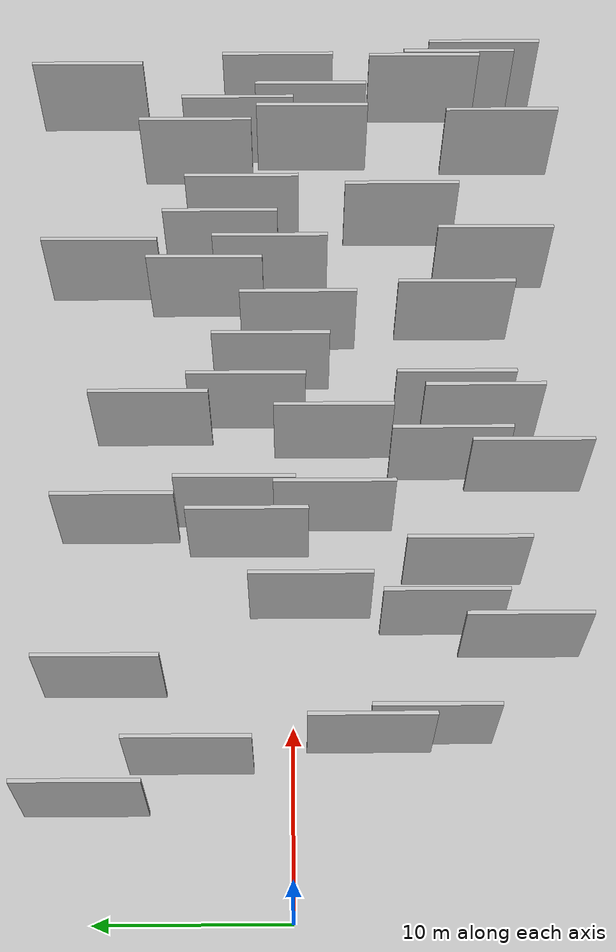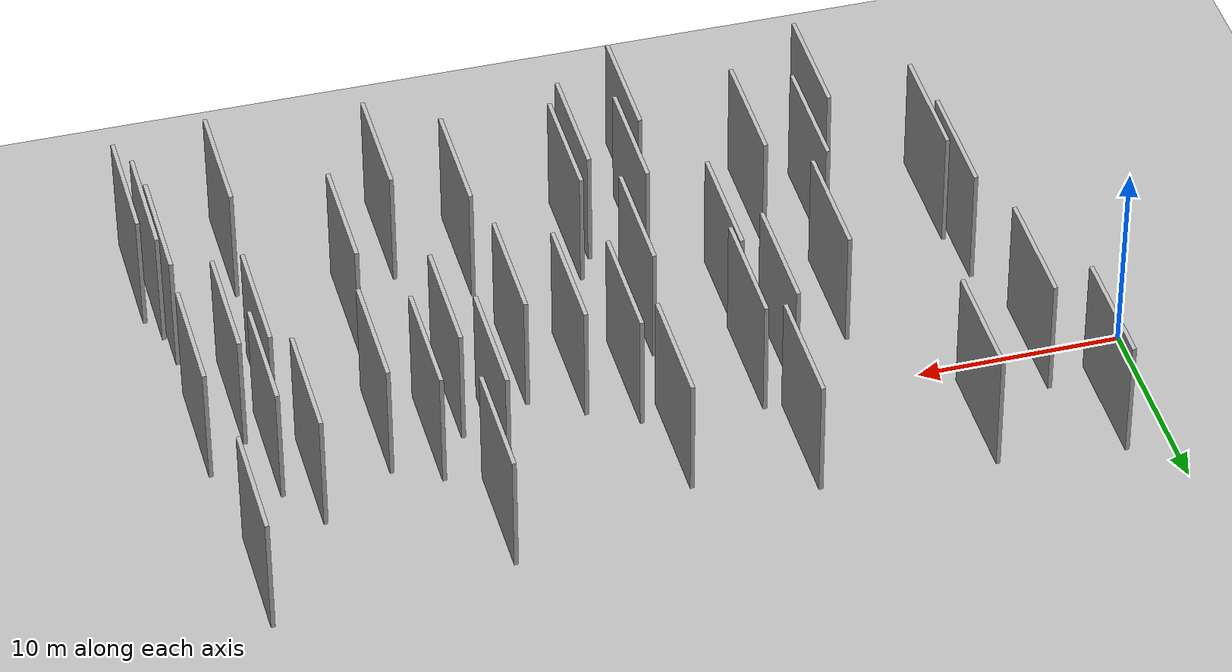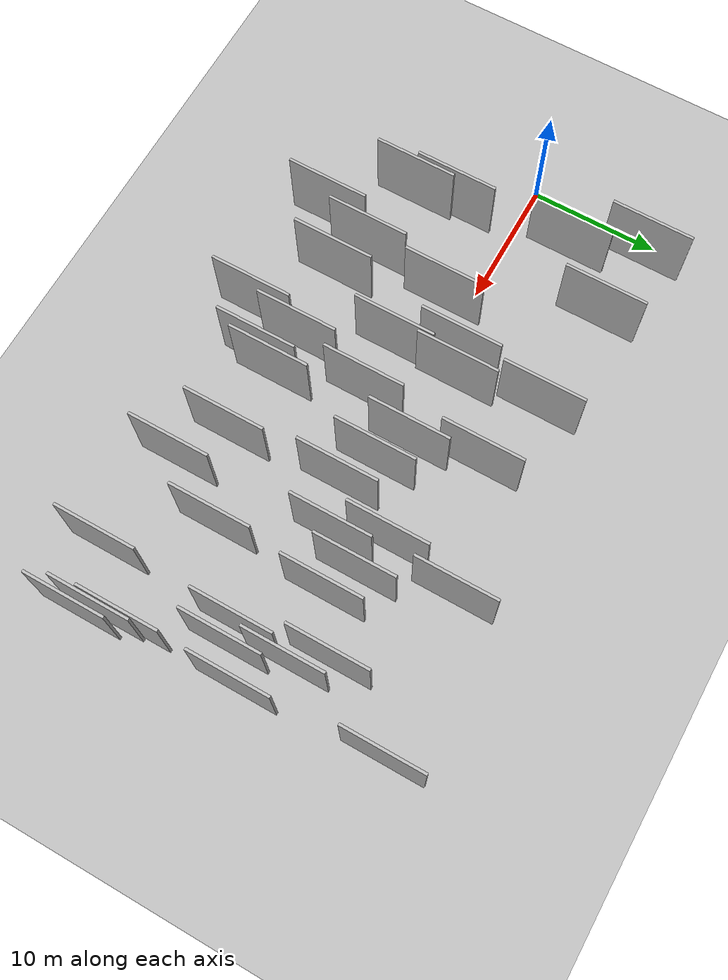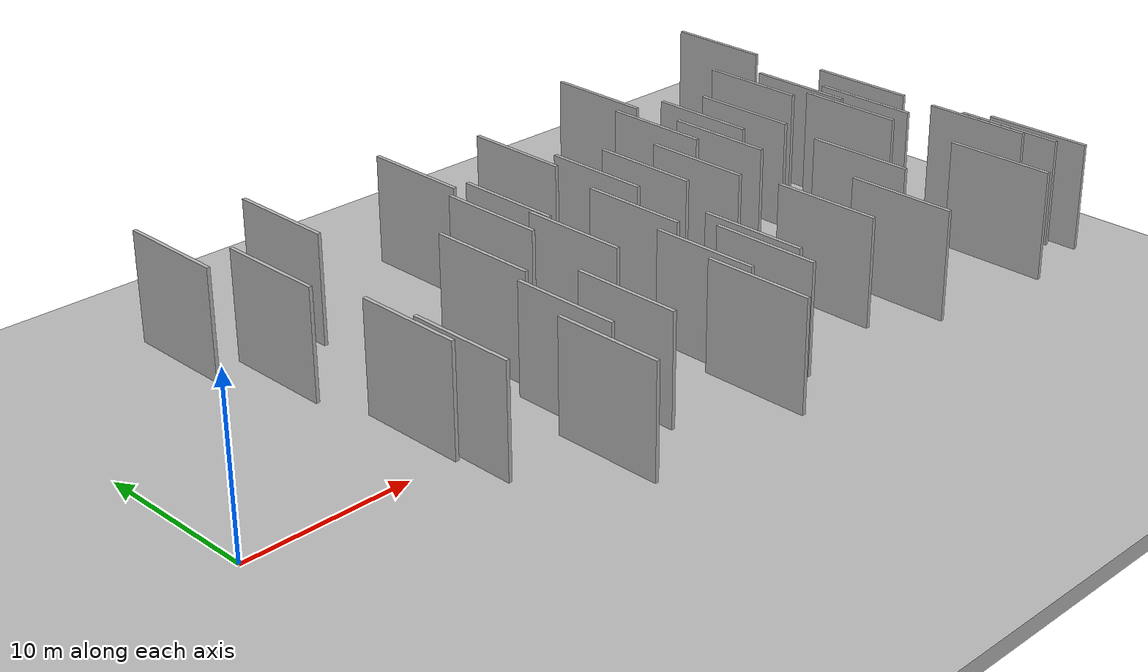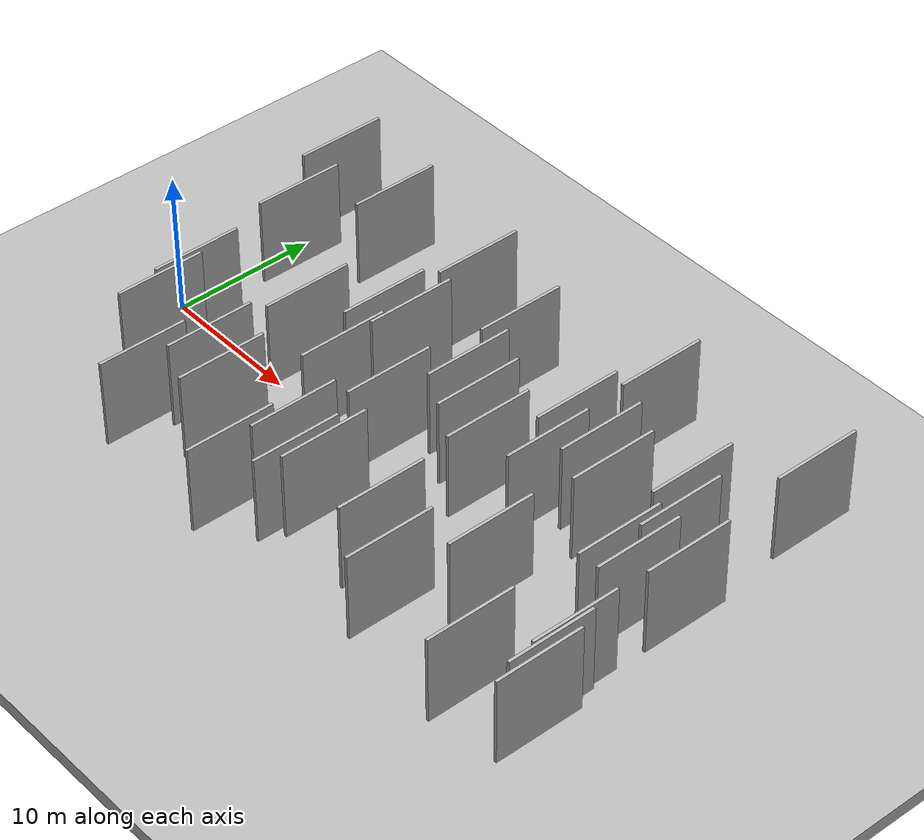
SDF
<?xml version="1.0" encoding="utf-8"?>

<sdf version="1.6">

   <world name="default">

      <gui fullscreen="0">

         <camera name="user_camera">

            <pose>-15 0 4.57585 0 0 0</pose>

            <view_controller>orbit</view_controller>

         </camera>

      </gui>

      <scene>

         <sky>

           <clouds>

             <speed>12</speed>

           </clouds>

         </sky>

         <ambient>0.4 0.4 0.4 1</ambient>

         <background>0.7 0.7 0.7 1</background>

         <shadows>1</shadows>

      </scene>

      <gravity>0 0 -9.8066</gravity>

      <magnetic_field>6e-06 2.3e-05 -4.2e-05</magnetic_field>

      <physics default="0" name="default_physics" type="ode">

         <ode>

            <solver>

               <type>quick</type>

               <iters>10</iters>

               <sor>1.0</sor>

               <use_dynamic_moi_rescaling>0</use_dynamic_moi_rescaling>

            </solver>

            <constraints>

               <cfm>0</cfm>

               <erp>0.2</erp>

               <contact_max_correcting_vel>100</contact_max_correcting_vel>

               <contact_surface_layer>0.001</contact_surface_layer>

            </constraints>

         </ode>

         <max_step_size>0.004</max_step_size>

         <real_time_factor>1</real_time_factor>

         <real_time_update_rate>250</real_time_update_rate>

      </physics>

      <light name="sun" type="directional">

         <cast_shadows>1</cast_shadows>

         <pose>0 0 10 0 0 0</pose>

         <diffuse>0.8 0.8 0.8 1</diffuse>

         <specular>0.2 0.2 0.2 1</specular>

         <attenuation>

            <range>1000</range>

            <constant>0.9</constant>

            <linear>0.01</linear>

            <quadratic>0.001</quadratic>

         </attenuation>

         <direction>-0.5 0.1 -0.9</direction>

      </light>

      <include>

         <name>ground_plane_1</name>

         <uri>model://HANNAS_ground_plane</uri>

         <pose>0 0 0  0 0 0</pose>

      </include>

      <include>

         <name>ground_plane_2</name>

         <uri>model://HANNAS_ground_plane</uri>

         <pose>100 0 0  0 0 0</pose>

      </include>

      <model name="HANNAS_wall_1">

         <static>1</static>

         <pose frame="">41.8605 2.8829 5.0 0.000000 0.000000 1.570796</pose>

         <link name="link">

            <pose frame="">0 0 3.00 0 0 0</pose>

            <collision name="collision">

               <geometry>

                  <box>

                     <size>6.00 0.2 6.00</size>

                  </box>

               </geometry>

               <max_contacts>10</max_contacts>

               <surface>

                  <contact>

                     <ode/>

                  </contact>

                  <bounce/>

                  <friction>

                     <torsional>

                        <ode/>

                     </torsional>

                     <ode/>

                  </friction>

               </surface>

            </collision>

            <visual name="visual">

               <cast_shadows>0</cast_shadows>

               <geometry>

                  <box>

                     <size>6.00 0.2 6.00</size>

                  </box>

               </geometry>

               <material>

                  <script>

                     <uri>model://HANNAS_wall/materials/scripts</uri>

                     <uri>model://HANNAS_wall/materials/textures</uri>

                     <name>vrc/HANNAS_wall</name>

                  </script>

               </material>

            </visual>

            <self_collide>0</self_collide>

            <enable_wind>0</enable_wind>

            <kinematic>0</kinematic>

         </link>

      </model>

      <model name="HANNAS_wall_2">

         <static>1</static>

         <pose frame="">21.2748 -11.8585 5.0 0.000000 0.000000 1.570796</pose>

         <link name="link">

            <pose frame="">0 0 3.00 0 0 0</pose>

            <collision name="collision">

               <geometry>

                  <box>

                     <size>6.00 0.2 6.00</size>

                  </box>

               </geometry>

               <max_contacts>10</max_contacts>

               <surface>

                  <contact>

                     <ode/>

                  </contact>

                  <bounce/>

                  <friction>

                     <torsional>

                        <ode/>

                     </torsional>

                     <ode/>

                  </friction>

               </surface>

            </collision>

            <visual name="visual">

               <cast_shadows>0</cast_shadows>

               <geometry>

                  <box>

                     <size>6.00 0.2 6.00</size>

                  </box>

               </geometry>

               <material>

                  <script>

                     <uri>model://HANNAS_wall/materials/scripts</uri>

                     <uri>model://HANNAS_wall/materials/textures</uri>

                     <name>vrc/HANNAS_wall</name>

                  </script>

               </material>

            </visual>

            <self_collide>0</self_collide>

            <enable_wind>0</enable_wind>

            <kinematic>0</kinematic>

         </link>

      </model>

      <model name="HANNAS_wall_3">

         <static>1</static>

         <pose frame="">44.7137 0.7372 5.0 0.000000 0.000000 1.570796</pose>

         <link name="link">

            <pose frame="">0 0 3.00 0 0 0</pose>

            <collision name="collision">

               <geometry>

                  <box>

                     <size>6.00 0.2 6.00</size>

                  </box>

               </geometry>

               <max_contacts>10</max_contacts>

               <surface>

                  <contact>

                     <ode/>

                  </contact>

                  <bounce/>

                  <friction>

                     <torsional>

                        <ode/>

                     </torsional>

                     <ode/>

                  </friction>

               </surface>

            </collision>

            <visual name="visual">

               <cast_shadows>0</cast_shadows>

               <geometry>

                  <box>

                     <size>6.00 0.2 6.00</size>

                  </box>

               </geometry>

               <material>

                  <script>

                     <uri>model://HANNAS_wall/materials/scripts</uri>

                     <uri>model://HANNAS_wall/materials/textures</uri>

                     <name>vrc/HANNAS_wall</name>

                  </script>

               </material>

            </visual>

            <self_collide>0</self_collide>

            <enable_wind>0</enable_wind>

            <kinematic>0</kinematic>

         </link>

      </model>

      <model name="HANNAS_wall_4">

         <static>1</static>

         <pose frame="">17.6522 2.2052 5.0 0.000000 0.000000 1.570796</pose>

         <link name="link">

            <pose frame="">0 0 3.00 0 0 0</pose>

            <collision name="collision">

               <geometry>

                  <box>

                     <size>6.00 0.2 6.00</size>

                  </box>

               </geometry>

               <max_contacts>10</max_contacts>

               <surface>

                  <contact>

                     <ode/>

                  </contact>

                  <bounce/>

                  <friction>

                     <torsional>

                        <ode/>

                     </torsional>

                     <ode/>

                  </friction>

               </surface>

            </collision>

            <visual name="visual">

               <cast_shadows>0</cast_shadows>

               <geometry>

                  <box>

                     <size>6.00 0.2 6.00</size>

                  </box>

               </geometry>

               <material>

                  <script>

                     <uri>model://HANNAS_wall/materials/scripts</uri>

                     <uri>model://HANNAS_wall/materials/textures</uri>

                     <name>vrc/HANNAS_wall</name>

                  </script>

               </material>

            </visual>

            <self_collide>0</self_collide>

            <enable_wind>0</enable_wind>

            <kinematic>0</kinematic>

         </link>

      </model>

      <model name="HANNAS_wall_5">

         <static>1</static>

         <pose frame="">41.3254 -1.1168 5.0 0.000000 0.000000 1.570796</pose>

         <link name="link">

            <pose frame="">0 0 3.00 0 0 0</pose>

            <collision name="collision">

               <geometry>

                  <box>

                     <size>6.00 0.2 6.00</size>

                  </box>

               </geometry>

               <max_contacts>10</max_contacts>

               <surface>

                  <contact>

                     <ode/>

                  </contact>

                  <bounce/>

                  <friction>

                     <torsional>

                        <ode/>

                     </torsional>

                     <ode/>

                  </friction>

               </surface>

            </collision>

            <visual name="visual">

               <cast_shadows>0</cast_shadows>

               <geometry>

                  <box>

                     <size>6.00 0.2 6.00</size>

                  </box>

               </geometry>

               <material>

                  <script>

                     <uri>model://HANNAS_wall/materials/scripts</uri>

                     <uri>model://HANNAS_wall/materials/textures</uri>

                     <name>vrc/HANNAS_wall</name>

                  </script>

               </material>

            </visual>

            <self_collide>0</self_collide>

            <enable_wind>0</enable_wind>

            <kinematic>0</kinematic>

         </link>

      </model>

      <model name="HANNAS_wall_6">

         <static>1</static>

         <pose frame="">32.8514 9.9570 5.0 0.000000 0.000000 1.570796</pose>

         <link name="link">

            <pose frame="">0 0 3.00 0 0 0</pose>

            <collision name="collision">

               <geometry>

                  <box>

                     <size>6.00 0.2 6.00</size>

                  </box>

               </geometry>

               <max_contacts>10</max_contacts>

               <surface>

                  <contact>

                     <ode/>

                  </contact>

                  <bounce/>

                  <friction>

                     <torsional>

                        <ode/>

                     </torsional>

                     <ode/>

                  </friction>

               </surface>

            </collision>

            <visual name="visual">

               <cast_shadows>0</cast_shadows>

               <geometry>

                  <box>

                     <size>6.00 0.2 6.00</size>

                  </box>

               </geometry>

               <material>

                  <script>

                     <uri>model://HANNAS_wall/materials/scripts</uri>

                     <uri>model://HANNAS_wall/materials/textures</uri>

                     <name>vrc/HANNAS_wall</name>

                  </script>

               </material>

            </visual>

            <self_collide>0</self_collide>

            <enable_wind>0</enable_wind>

            <kinematic>0</kinematic>

         </link>

      </model>

      <model name="HANNAS_wall_7">

         <static>1</static>

         <pose frame="">7.7913 -6.6376 5.0 0.000000 0.000000 1.570796</pose>

         <link name="link">

            <pose frame="">0 0 3.00 0 0 0</pose>

            <collision name="collision">

               <geometry>

                  <box>

                     <size>6.00 0.2 6.00</size>

                  </box>

               </geometry>

               <max_contacts>10</max_contacts>

               <surface>

                  <contact>

                     <ode/>

                  </contact>

                  <bounce/>

                  <friction>

                     <torsional>

                        <ode/>

                     </torsional>

                     <ode/>

                  </friction>

               </surface>

            </collision>

            <visual name="visual">

               <cast_shadows>0</cast_shadows>

               <geometry>

                  <box>

                     <size>6.00 0.2 6.00</size>

                  </box>

               </geometry>

               <material>

                  <script>

                     <uri>model://HANNAS_wall/materials/scripts</uri>

                     <uri>model://HANNAS_wall/materials/textures</uri>

                     <name>vrc/HANNAS_wall</name>

                  </script>

               </material>

            </visual>

            <self_collide>0</self_collide>

            <enable_wind>0</enable_wind>

            <kinematic>0</kinematic>

         </link>

      </model>

      <model name="HANNAS_wall_8">

         <static>1</static>

         <pose frame="">23.9920 7.1587 5.0 0.000000 0.000000 1.570796</pose>

         <link name="link">

            <pose frame="">0 0 3.00 0 0 0</pose>

            <collision name="collision">

               <geometry>

                  <box>

                     <size>6.00 0.2 6.00</size>

                  </box>

               </geometry>

               <max_contacts>10</max_contacts>

               <surface>

                  <contact>

                     <ode/>

                  </contact>

                  <bounce/>

                  <friction>

                     <torsional>

                        <ode/>

                     </torsional>

                     <ode/>

                  </friction>

               </surface>

            </collision>

            <visual name="visual">

               <cast_shadows>0</cast_shadows>

               <geometry>

                  <box>

                     <size>6.00 0.2 6.00</size>

                  </box>

               </geometry>

               <material>

                  <script>

                     <uri>model://HANNAS_wall/materials/scripts</uri>

                     <uri>model://HANNAS_wall/materials/textures</uri>

                     <name>vrc/HANNAS_wall</name>

                  </script>

               </material>

            </visual>

            <self_collide>0</self_collide>

            <enable_wind>0</enable_wind>

            <kinematic>0</kinematic>

         </link>

      </model>

      <model name="HANNAS_wall_9">

         <static>1</static>

         <pose frame="">21.9663 -7.9301 5.0 0.000000 0.000000 1.570796</pose>

         <link name="link">

            <pose frame="">0 0 3.00 0 0 0</pose>

            <collision name="collision">

               <geometry>

                  <box>

                     <size>6.00 0.2 6.00</size>

                  </box>

               </geometry>

               <max_contacts>10</max_contacts>

               <surface>

                  <contact>

                     <ode/>

                  </contact>

                  <bounce/>

                  <friction>

                     <torsional>

                        <ode/>

                     </torsional>

                     <ode/>

                  </friction>

               </surface>

            </collision>

            <visual name="visual">

               <cast_shadows>0</cast_shadows>

               <geometry>

                  <box>

                     <size>6.00 0.2 6.00</size>

                  </box>

               </geometry>

               <material>

                  <script>

                     <uri>model://HANNAS_wall/materials/scripts</uri>

                     <uri>model://HANNAS_wall/materials/textures</uri>

                     <name>vrc/HANNAS_wall</name>

                  </script>

               </material>

            </visual>

            <self_collide>0</self_collide>

            <enable_wind>0</enable_wind>

            <kinematic>0</kinematic>

         </link>

      </model>

      <model name="HANNAS_wall_10">

         <static>1</static>

         <pose frame="">40.9733 -11.3101 5.0 0.000000 0.000000 1.570796</pose>

         <link name="link">

            <pose frame="">0 0 3.00 0 0 0</pose>

            <collision name="collision">

               <geometry>

                  <box>

                     <size>6.00 0.2 6.00</size>

                  </box>

               </geometry>

               <max_contacts>10</max_contacts>

               <surface>

                  <contact>

                     <ode/>

                  </contact>

                  <bounce/>

                  <friction>

                     <torsional>

                        <ode/>

                     </torsional>

                     <ode/>

                  </friction>

               </surface>

            </collision>

            <visual name="visual">

               <cast_shadows>0</cast_shadows>

               <geometry>

                  <box>

                     <size>6.00 0.2 6.00</size>

                  </box>

               </geometry>

               <material>

                  <script>

                     <uri>model://HANNAS_wall/materials/scripts</uri>

                     <uri>model://HANNAS_wall/materials/textures</uri>

                     <name>vrc/HANNAS_wall</name>

                  </script>

               </material>

            </visual>

            <self_collide>0</self_collide>

            <enable_wind>0</enable_wind>

            <kinematic>0</kinematic>

         </link>

      </model>

      <model name="HANNAS_wall_11">

         <static>1</static>

         <pose frame="">18.4285 8.7415 5.0 0.000000 0.000000 1.570796</pose>

         <link name="link">

            <pose frame="">0 0 3.00 0 0 0</pose>

            <collision name="collision">

               <geometry>

                  <box>

                     <size>6.00 0.2 6.00</size>

                  </box>

               </geometry>

               <max_contacts>10</max_contacts>

               <surface>

                  <contact>

                     <ode/>

                  </contact>

                  <bounce/>

                  <friction>

                     <torsional>

                        <ode/>

                     </torsional>

                     <ode/>

                  </friction>

               </surface>

            </collision>

            <visual name="visual">

               <cast_shadows>0</cast_shadows>

               <geometry>

                  <box>

                     <size>6.00 0.2 6.00</size>

                  </box>

               </geometry>

               <material>

                  <script>

                     <uri>model://HANNAS_wall/materials/scripts</uri>

                     <uri>model://HANNAS_wall/materials/textures</uri>

                     <name>vrc/HANNAS_wall</name>

                  </script>

               </material>

            </visual>

            <self_collide>0</self_collide>

            <enable_wind>0</enable_wind>

            <kinematic>0</kinematic>

         </link>

      </model>

      <model name="HANNAS_wall_12">

         <static>1</static>

         <pose frame="">34.6141 3.7441 5.0 0.000000 0.000000 1.570796</pose>

         <link name="link">

            <pose frame="">0 0 3.00 0 0 0</pose>

            <collision name="collision">

               <geometry>

                  <box>

                     <size>6.00 0.2 6.00</size>

                  </box>

               </geometry>

               <max_contacts>10</max_contacts>

               <surface>

                  <contact>

                     <ode/>

                  </contact>

                  <bounce/>

                  <friction>

                     <torsional>

                        <ode/>

                     </torsional>

                     <ode/>

                  </friction>

               </surface>

            </collision>

            <visual name="visual">

               <cast_shadows>0</cast_shadows>

               <geometry>

                  <box>

                     <size>6.00 0.2 6.00</size>

                  </box>

               </geometry>

               <material>

                  <script>

                     <uri>model://HANNAS_wall/materials/scripts</uri>

                     <uri>model://HANNAS_wall/materials/textures</uri>

                     <name>vrc/HANNAS_wall</name>

                  </script>

               </material>

            </visual>

            <self_collide>0</self_collide>

            <enable_wind>0</enable_wind>

            <kinematic>0</kinematic>

         </link>

      </model>

      <model name="HANNAS_wall_13">

         <static>1</static>

         <pose frame="">24.3329 -9.6374 5.0 0.000000 0.000000 1.570796</pose>

         <link name="link">

            <pose frame="">0 0 3.00 0 0 0</pose>

            <collision name="collision">

               <geometry>

                  <box>

                     <size>6.00 0.2 6.00</size>

                  </box>

               </geometry>

               <max_contacts>10</max_contacts>

               <surface>

                  <contact>

                     <ode/>

                  </contact>

                  <bounce/>

                  <friction>

                     <torsional>

                        <ode/>

                     </torsional>

                     <ode/>

                  </friction>

               </surface>

            </collision>

            <visual name="visual">

               <cast_shadows>0</cast_shadows>

               <geometry>

                  <box>

                     <size>6.00 0.2 6.00</size>

                  </box>

               </geometry>

               <material>

                  <script>

                     <uri>model://HANNAS_wall/materials/scripts</uri>

                     <uri>model://HANNAS_wall/materials/textures</uri>

                     <name>vrc/HANNAS_wall</name>

                  </script>

               </material>

            </visual>

            <self_collide>0</self_collide>

            <enable_wind>0</enable_wind>

            <kinematic>0</kinematic>

         </link>

      </model>

      <model name="HANNAS_wall_14">

         <static>1</static>

         <pose frame="">14.3051 -0.8612 5.0 0.000000 0.000000 1.570796</pose>

         <link name="link">

            <pose frame="">0 0 3.00 0 0 0</pose>

            <collision name="collision">

               <geometry>

                  <box>

                     <size>6.00 0.2 6.00</size>

                  </box>

               </geometry>

               <max_contacts>10</max_contacts>

               <surface>

                  <contact>

                     <ode/>

                  </contact>

                  <bounce/>

                  <friction>

                     <torsional>

                        <ode/>

                     </torsional>

                     <ode/>

                  </friction>

               </surface>

            </collision>

            <visual name="visual">

               <cast_shadows>0</cast_shadows>

               <geometry>

                  <box>

                     <size>6.00 0.2 6.00</size>

                  </box>

               </geometry>

               <material>

                  <script>

                     <uri>model://HANNAS_wall/materials/scripts</uri>

                     <uri>model://HANNAS_wall/materials/textures</uri>

                     <name>vrc/HANNAS_wall</name>

                  </script>

               </material>

            </visual>

            <self_collide>0</self_collide>

            <enable_wind>0</enable_wind>

            <kinematic>0</kinematic>

         </link>

      </model>

      <model name="HANNAS_wall_15">

         <static>1</static>

         <pose frame="">25.0106 2.3156 5.0 0.000000 0.000000 1.570796</pose>

         <link name="link">

            <pose frame="">0 0 3.00 0 0 0</pose>

            <collision name="collision">

               <geometry>

                  <box>

                     <size>6.00 0.2 6.00</size>

                  </box>

               </geometry>

               <max_contacts>10</max_contacts>

               <surface>

                  <contact>

                     <ode/>

                  </contact>

                  <bounce/>

                  <friction>

                     <torsional>

                        <ode/>

                     </torsional>

                     <ode/>

                  </friction>

               </surface>

            </collision>

            <visual name="visual">

               <cast_shadows>0</cast_shadows>

               <geometry>

                  <box>

                     <size>6.00 0.2 6.00</size>

                  </box>

               </geometry>

               <material>

                  <script>

                     <uri>model://HANNAS_wall/materials/scripts</uri>

                     <uri>model://HANNAS_wall/materials/textures</uri>

                     <name>vrc/HANNAS_wall</name>

                  </script>

               </material>

            </visual>

            <self_collide>0</self_collide>

            <enable_wind>0</enable_wind>

            <kinematic>0</kinematic>

         </link>

      </model>

      <model name="HANNAS_wall_16">

         <static>1</static>

         <pose frame="">23.2365 -2.0718 5.0 0.000000 0.000000 1.570796</pose>

         <link name="link">

            <pose frame="">0 0 3.00 0 0 0</pose>

            <collision name="collision">

               <geometry>

                  <box>

                     <size>6.00 0.2 6.00</size>

                  </box>

               </geometry>

               <max_contacts>10</max_contacts>

               <surface>

                  <contact>

                     <ode/>

                  </contact>

                  <bounce/>

                  <friction>

                     <torsional>

                        <ode/>

                     </torsional>

                     <ode/>

                  </friction>

               </surface>

            </collision>

            <visual name="visual">

               <cast_shadows>0</cast_shadows>

               <geometry>

                  <box>

                     <size>6.00 0.2 6.00</size>

                  </box>

               </geometry>

               <material>

                  <script>

                     <uri>model://HANNAS_wall/materials/scripts</uri>

                     <uri>model://HANNAS_wall/materials/textures</uri>

                     <name>vrc/HANNAS_wall</name>

                  </script>

               </material>

            </visual>

            <self_collide>0</self_collide>

            <enable_wind>0</enable_wind>

            <kinematic>0</kinematic>

         </link>

      </model>

      <model name="HANNAS_wall_17">

         <static>1</static>

         <pose frame="">25.0670 -8.2368 5.0 0.000000 0.000000 1.570796</pose>

         <link name="link">

            <pose frame="">0 0 3.00 0 0 0</pose>

            <collision name="collision">

               <geometry>

                  <box>

                     <size>6.00 0.2 6.00</size>

                  </box>

               </geometry>

               <max_contacts>10</max_contacts>

               <surface>

                  <contact>

                     <ode/>

                  </contact>

                  <bounce/>

                  <friction>

                     <torsional>

                        <ode/>

                     </torsional>

                     <ode/>

                  </friction>

               </surface>

            </collision>

            <visual name="visual">

               <cast_shadows>0</cast_shadows>

               <geometry>

                  <box>

                     <size>6.00 0.2 6.00</size>

                  </box>

               </geometry>

               <material>

                  <script>

                     <uri>model://HANNAS_wall/materials/scripts</uri>

                     <uri>model://HANNAS_wall/materials/textures</uri>

                     <name>vrc/HANNAS_wall</name>

                  </script>

               </material>

            </visual>

            <self_collide>0</self_collide>

            <enable_wind>0</enable_wind>

            <kinematic>0</kinematic>

         </link>

      </model>

      <model name="HANNAS_wall_18">

         <static>1</static>

         <pose frame="">13.4215 -7.3041 5.0 0.000000 0.000000 1.570796</pose>

         <link name="link">

            <pose frame="">0 0 3.00 0 0 0</pose>

            <collision name="collision">

               <geometry>

                  <box>

                     <size>6.00 0.2 6.00</size>

                  </box>

               </geometry>

               <max_contacts>10</max_contacts>

               <surface>

                  <contact>

                     <ode/>

                  </contact>

                  <bounce/>

                  <friction>

                     <torsional>

                        <ode/>

                     </torsional>

                     <ode/>

                  </friction>

               </surface>

            </collision>

            <visual name="visual">

               <cast_shadows>0</cast_shadows>

               <geometry>

                  <box>

                     <size>6.00 0.2 6.00</size>

                  </box>

               </geometry>

               <material>

                  <script>

                     <uri>model://HANNAS_wall/materials/scripts</uri>

                     <uri>model://HANNAS_wall/materials/textures</uri>

                     <name>vrc/HANNAS_wall</name>

                  </script>

               </material>

            </visual>

            <self_collide>0</self_collide>

            <enable_wind>0</enable_wind>

            <kinematic>0</kinematic>

         </link>

      </model>

      <model name="HANNAS_wall_19">

         <static>1</static>

         <pose frame="">33.0993 1.1407 5.0 0.000000 0.000000 1.570796</pose>

         <link name="link">

            <pose frame="">0 0 3.00 0 0 0</pose>

            <collision name="collision">

               <geometry>

                  <box>

                     <size>6.00 0.2 6.00</size>

                  </box>

               </geometry>

               <max_contacts>10</max_contacts>

               <surface>

                  <contact>

                     <ode/>

                  </contact>

                  <bounce/>

                  <friction>

                     <torsional>

                        <ode/>

                     </torsional>

                     <ode/>

                  </friction>

               </surface>

            </collision>

            <visual name="visual">

               <cast_shadows>0</cast_shadows>

               <geometry>

                  <box>

                     <size>6.00 0.2 6.00</size>

                  </box>

               </geometry>

               <material>

                  <script>

                     <uri>model://HANNAS_wall/materials/scripts</uri>

                     <uri>model://HANNAS_wall/materials/textures</uri>

                     <name>vrc/HANNAS_wall</name>

                  </script>

               </material>

            </visual>

            <self_collide>0</self_collide>

            <enable_wind>0</enable_wind>

            <kinematic>0</kinematic>

         </link>

      </model>

      <model name="HANNAS_wall_20">

         <static>1</static>

         <pose frame="">7.3598 -3.6595 5.0 0.000000 0.000000 1.570796</pose>

         <link name="link">

            <pose frame="">0 0 3.00 0 0 0</pose>

            <collision name="collision">

               <geometry>

                  <box>

                     <size>6.00 0.2 6.00</size>

                  </box>

               </geometry>

               <max_contacts>10</max_contacts>

               <surface>

                  <contact>

                     <ode/>

                  </contact>

                  <bounce/>

                  <friction>

                     <torsional>

                        <ode/>

                     </torsional>

                     <ode/>

                  </friction>

               </surface>

            </collision>

            <visual name="visual">

               <cast_shadows>0</cast_shadows>

               <geometry>

                  <box>

                     <size>6.00 0.2 6.00</size>

                  </box>

               </geometry>

               <material>

                  <script>

                     <uri>model://HANNAS_wall/materials/scripts</uri>

                     <uri>model://HANNAS_wall/materials/textures</uri>

                     <name>vrc/HANNAS_wall</name>

                  </script>

               </material>

            </visual>

            <self_collide>0</self_collide>

            <enable_wind>0</enable_wind>

            <kinematic>0</kinematic>

         </link>

      </model>

      <model name="HANNAS_wall_21">

         <static>1</static>

         <pose frame="">40.3976 5.1597 5.0 0.000000 0.000000 1.570796</pose>

         <link name="link">

            <pose frame="">0 0 3.00 0 0 0</pose>

            <collision name="collision">

               <geometry>

                  <box>

                     <size>6.00 0.2 6.00</size>

                  </box>

               </geometry>

               <max_contacts>10</max_contacts>

               <surface>

                  <contact>

                     <ode/>

                  </contact>

                  <bounce/>

                  <friction>

                     <torsional>

                        <ode/>

                     </torsional>

                     <ode/>

                  </friction>

               </surface>

            </collision>

            <visual name="visual">

               <cast_shadows>0</cast_shadows>

               <geometry>

                  <box>

                     <size>6.00 0.2 6.00</size>

                  </box>

               </geometry>

               <material>

                  <script>

                     <uri>model://HANNAS_wall/materials/scripts</uri>

                     <uri>model://HANNAS_wall/materials/textures</uri>

                     <name>vrc/HANNAS_wall</name>

                  </script>

               </material>

            </visual>

            <self_collide>0</self_collide>

            <enable_wind>0</enable_wind>

            <kinematic>0</kinematic>

         </link>

      </model>

      <model name="HANNAS_wall_22">

         <static>1</static>

         <pose frame="">10.2107 9.1877 5.0 0.000000 0.000000 1.570796</pose>

         <link name="link">

            <pose frame="">0 0 3.00 0 0 0</pose>

            <collision name="collision">

               <geometry>

                  <box>

                     <size>6.00 0.2 6.00</size>

                  </box>

               </geometry>

               <max_contacts>10</max_contacts>

               <surface>

                  <contact>

                     <ode/>

                  </contact>

                  <bounce/>

                  <friction>

                     <torsional>

                        <ode/>

                     </torsional>

                     <ode/>

                  </friction>

               </surface>

            </collision>

            <visual name="visual">

               <cast_shadows>0</cast_shadows>

               <geometry>

                  <box>

                     <size>6.00 0.2 6.00</size>

                  </box>

               </geometry>

               <material>

                  <script>

                     <uri>model://HANNAS_wall/materials/scripts</uri>

                     <uri>model://HANNAS_wall/materials/textures</uri>

                     <name>vrc/HANNAS_wall</name>

                  </script>

               </material>

            </visual>

            <self_collide>0</self_collide>

            <enable_wind>0</enable_wind>

            <kinematic>0</kinematic>

         </link>

      </model>

      <model name="HANNAS_wall_23">

         <static>1</static>

         <pose frame="">6.3220 4.8738 5.0 0.000000 0.000000 1.570796</pose>

         <link name="link">

            <pose frame="">0 0 3.00 0 0 0</pose>

            <collision name="collision">

               <geometry>

                  <box>

                     <size>6.00 0.2 6.00</size>

                  </box>

               </geometry>

               <max_contacts>10</max_contacts>

               <surface>

                  <contact>

                     <ode/>

                  </contact>

                  <bounce/>

                  <friction>

                     <torsional>

                        <ode/>

                     </torsional>

                     <ode/>

                  </friction>

               </surface>

            </collision>

            <visual name="visual">

               <cast_shadows>0</cast_shadows>

               <geometry>

                  <box>

                     <size>6.00 0.2 6.00</size>

                  </box>

               </geometry>

               <material>

                  <script>

                     <uri>model://HANNAS_wall/materials/scripts</uri>

                     <uri>model://HANNAS_wall/materials/textures</uri>

                     <name>vrc/HANNAS_wall</name>

                  </script>

               </material>

            </visual>

            <self_collide>0</self_collide>

            <enable_wind>0</enable_wind>

            <kinematic>0</kinematic>

         </link>

      </model>

      <model name="HANNAS_wall_24">

         <static>1</static>

         <pose frame="">31.7889 4.5141 5.0 0.000000 0.000000 1.570796</pose>

         <link name="link">

            <pose frame="">0 0 3.00 0 0 0</pose>

            <collision name="collision">

               <geometry>

                  <box>

                     <size>6.00 0.2 6.00</size>

                  </box>

               </geometry>

               <max_contacts>10</max_contacts>

               <surface>

                  <contact>

                     <ode/>

                  </contact>

                  <bounce/>

                  <friction>

                     <torsional>

                        <ode/>

                     </torsional>

                     <ode/>

                  </friction>

               </surface>

            </collision>

            <visual name="visual">

               <cast_shadows>0</cast_shadows>

               <geometry>

                  <box>

                     <size>6.00 0.2 6.00</size>

                  </box>

               </geometry>

               <material>

                  <script>

                     <uri>model://HANNAS_wall/materials/scripts</uri>

                     <uri>model://HANNAS_wall/materials/textures</uri>

                     <name>vrc/HANNAS_wall</name>

                  </script>

               </material>

            </visual>

            <self_collide>0</self_collide>

            <enable_wind>0</enable_wind>

            <kinematic>0</kinematic>

         </link>

      </model>

      <model name="HANNAS_wall_25">

         <static>1</static>

         <pose frame="">45.5081 -10.5520 5.0 0.000000 0.000000 1.570796</pose>

         <link name="link">

            <pose frame="">0 0 3.00 0 0 0</pose>

            <collision name="collision">

               <geometry>

                  <box>

                     <size>6.00 0.2 6.00</size>

                  </box>

               </geometry>

               <max_contacts>10</max_contacts>

               <surface>

                  <contact>

                     <ode/>

                  </contact>

                  <bounce/>

                  <friction>

                     <torsional>

                        <ode/>

                     </torsional>

                     <ode/>

                  </friction>

               </surface>

            </collision>

            <visual name="visual">

               <cast_shadows>0</cast_shadows>

               <geometry>

                  <box>

                     <size>6.00 0.2 6.00</size>

                  </box>

               </geometry>

               <material>

                  <script>

                     <uri>model://HANNAS_wall/materials/scripts</uri>

                     <uri>model://HANNAS_wall/materials/textures</uri>

                     <name>vrc/HANNAS_wall</name>

                  </script>

               </material>

            </visual>

            <self_collide>0</self_collide>

            <enable_wind>0</enable_wind>

            <kinematic>0</kinematic>

         </link>

      </model>

      <model name="HANNAS_wall_26">

         <static>1</static>

         <pose frame="">29.7296 -0.3176 5.0 0.000000 0.000000 1.570796</pose>

         <link name="link">

            <pose frame="">0 0 3.00 0 0 0</pose>

            <collision name="collision">

               <geometry>

                  <box>

                     <size>6.00 0.2 6.00</size>

                  </box>

               </geometry>

               <max_contacts>10</max_contacts>

               <surface>

                  <contact>

                     <ode/>

                  </contact>

                  <bounce/>

                  <friction>

                     <torsional>

                        <ode/>

                     </torsional>

                     <ode/>

                  </friction>

               </surface>

            </collision>

            <visual name="visual">

               <cast_shadows>0</cast_shadows>

               <geometry>

                  <box>

                     <size>6.00 0.2 6.00</size>

                  </box>

               </geometry>

               <material>

                  <script>

                     <uri>model://HANNAS_wall/materials/scripts</uri>

                     <uri>model://HANNAS_wall/materials/textures</uri>

                     <name>vrc/HANNAS_wall</name>

                  </script>

               </material>

            </visual>

            <self_collide>0</self_collide>

            <enable_wind>0</enable_wind>

            <kinematic>0</kinematic>

         </link>

      </model>

      <model name="HANNAS_wall_27">

         <static>1</static>

         <pose frame="">16.1032 -8.4959 5.0 0.000000 0.000000 1.570796</pose>

         <link name="link">

            <pose frame="">0 0 3.00 0 0 0</pose>

            <collision name="collision">

               <geometry>

                  <box>

                     <size>6.00 0.2 6.00</size>

                  </box>

               </geometry>

               <max_contacts>10</max_contacts>

               <surface>

                  <contact>

                     <ode/>

                  </contact>

                  <bounce/>

                  <friction>

                     <torsional>

                        <ode/>

                     </torsional>

                     <ode/>

                  </friction>

               </surface>

            </collision>

            <visual name="visual">

               <cast_shadows>0</cast_shadows>

               <geometry>

                  <box>

                     <size>6.00 0.2 6.00</size>

                  </box>

               </geometry>

               <material>

                  <script>

                     <uri>model://HANNAS_wall/materials/scripts</uri>

                     <uri>model://HANNAS_wall/materials/textures</uri>

                     <name>vrc/HANNAS_wall</name>

                  </script>

               </material>

            </visual>

            <self_collide>0</self_collide>

            <enable_wind>0</enable_wind>

            <kinematic>0</kinematic>

         </link>

      </model>

      <model name="HANNAS_wall_28">

         <static>1</static>

         <pose frame="">44.0867 11.0517 5.0 0.000000 0.000000 1.570796</pose>

         <link name="link">

            <pose frame="">0 0 3.00 0 0 0</pose>

            <collision name="collision">

               <geometry>

                  <box>

                     <size>6.00 0.2 6.00</size>

                  </box>

               </geometry>

               <max_contacts>10</max_contacts>

               <surface>

                  <contact>

                     <ode/>

                  </contact>

                  <bounce/>

                  <friction>

                     <torsional>

                        <ode/>

                     </torsional>

                     <ode/>

                  </friction>

               </surface>

            </collision>

            <visual name="visual">

               <cast_shadows>0</cast_shadows>

               <geometry>

                  <box>

                     <size>6.00 0.2 6.00</size>

                  </box>

               </geometry>

               <material>

                  <script>

                     <uri>model://HANNAS_wall/materials/scripts</uri>

                     <uri>model://HANNAS_wall/materials/textures</uri>

                     <name>vrc/HANNAS_wall</name>

                  </script>

               </material>

            </visual>

            <self_collide>0</self_collide>

            <enable_wind>0</enable_wind>

            <kinematic>0</kinematic>

         </link>

      </model>

      <model name="HANNAS_wall_29">

         <static>1</static>

         <pose frame="">19.3353 2.8286 5.0 0.000000 0.000000 1.570796</pose>

         <link name="link">

            <pose frame="">0 0 3.00 0 0 0</pose>

            <collision name="collision">

               <geometry>

                  <box>

                     <size>6.00 0.2 6.00</size>

                  </box>

               </geometry>

               <max_contacts>10</max_contacts>

               <surface>

                  <contact>

                     <ode/>

                  </contact>

                  <bounce/>

                  <friction>

                     <torsional>

                        <ode/>

                     </torsional>

                     <ode/>

                  </friction>

               </surface>

            </collision>

            <visual name="visual">

               <cast_shadows>0</cast_shadows>

               <geometry>

                  <box>

                     <size>6.00 0.2 6.00</size>

                  </box>

               </geometry>

               <material>

                  <script>

                     <uri>model://HANNAS_wall/materials/scripts</uri>

                     <uri>model://HANNAS_wall/materials/textures</uri>

                     <name>vrc/HANNAS_wall</name>

                  </script>

               </material>

            </visual>

            <self_collide>0</self_collide>

            <enable_wind>0</enable_wind>

            <kinematic>0</kinematic>

         </link>

      </model>

      <model name="HANNAS_wall_30">

         <static>1</static>

         <pose frame="">33.5473 -10.6011 5.0 0.000000 0.000000 1.570796</pose>

         <link name="link">

            <pose frame="">0 0 3.00 0 0 0</pose>

            <collision name="collision">

               <geometry>

                  <box>

                     <size>6.00 0.2 6.00</size>

                  </box>

               </geometry>

               <max_contacts>10</max_contacts>

               <surface>

                  <contact>

                     <ode/>

                  </contact>

                  <bounce/>

                  <friction>

                     <torsional>

                        <ode/>

                     </torsional>

                     <ode/>

                  </friction>

               </surface>

            </collision>

            <visual name="visual">

               <cast_shadows>0</cast_shadows>

               <geometry>

                  <box>

                     <size>6.00 0.2 6.00</size>

                  </box>

               </geometry>

               <material>

                  <script>

                     <uri>model://HANNAS_wall/materials/scripts</uri>

                     <uri>model://HANNAS_wall/materials/textures</uri>

                     <name>vrc/HANNAS_wall</name>

                  </script>

               </material>

            </visual>

            <self_collide>0</self_collide>

            <enable_wind>0</enable_wind>

            <kinematic>0</kinematic>

         </link>

      </model>

      <model name="HANNAS_wall_31">

         <static>1</static>

         <pose frame="">27.2971 1.0812 5.0 0.000000 0.000000 1.570796</pose>

         <link name="link">

            <pose frame="">0 0 3.00 0 0 0</pose>

            <collision name="collision">

               <geometry>

                  <box>

                     <size>6.00 0.2 6.00</size>

                  </box>

               </geometry>

               <max_contacts>10</max_contacts>

               <surface>

                  <contact>

                     <ode/>

                  </contact>

                  <bounce/>

                  <friction>

                     <torsional>

                        <ode/>

                     </torsional>

                     <ode/>

                  </friction>

               </surface>

            </collision>

            <visual name="visual">

               <cast_shadows>0</cast_shadows>

               <geometry>

                  <box>

                     <size>6.00 0.2 6.00</size>

                  </box>

               </geometry>

               <material>

                  <script>

                     <uri>model://HANNAS_wall/materials/scripts</uri>

                     <uri>model://HANNAS_wall/materials/textures</uri>

                     <name>vrc/HANNAS_wall</name>

                  </script>

               </material>

            </visual>

            <self_collide>0</self_collide>

            <enable_wind>0</enable_wind>

            <kinematic>0</kinematic>

         </link>

      </model>

      <model name="HANNAS_wall_32">

         <static>1</static>

         <pose frame="">44.8790 -9.1611 5.0 0.000000 0.000000 1.570796</pose>

         <link name="link">

            <pose frame="">0 0 3.00 0 0 0</pose>

            <collision name="collision">

               <geometry>

                  <box>

                     <size>6.00 0.2 6.00</size>

                  </box>

               </geometry>

               <max_contacts>10</max_contacts>

               <surface>

                  <contact>

                     <ode/>

                  </contact>

                  <bounce/>

                  <friction>

                     <torsional>

                        <ode/>

                     </torsional>

                     <ode/>

                  </friction>

               </surface>

            </collision>

            <visual name="visual">

               <cast_shadows>0</cast_shadows>

               <geometry>

                  <box>

                     <size>6.00 0.2 6.00</size>

                  </box>

               </geometry>

               <material>

                  <script>

                     <uri>model://HANNAS_wall/materials/scripts</uri>

                     <uri>model://HANNAS_wall/materials/textures</uri>

                     <name>vrc/HANNAS_wall</name>

                  </script>

               </material>

            </visual>

            <self_collide>0</self_collide>

            <enable_wind>0</enable_wind>

            <kinematic>0</kinematic>

         </link>

      </model>

      <model name="HANNAS_wall_33">

         <static>1</static>

         <pose frame="">30.2858 -8.4612 5.0 0.000000 0.000000 1.570796</pose>

         <link name="link">

            <pose frame="">0 0 3.00 0 0 0</pose>

            <collision name="collision">

               <geometry>

                  <box>

                     <size>6.00 0.2 6.00</size>

                  </box>

               </geometry>

               <max_contacts>10</max_contacts>

               <surface>

                  <contact>

                     <ode/>

                  </contact>

                  <bounce/>

                  <friction>

                     <torsional>

                        <ode/>

                     </torsional>

                     <ode/>

                  </friction>

               </surface>

            </collision>

            <visual name="visual">

               <cast_shadows>0</cast_shadows>

               <geometry>

                  <box>

                     <size>6.00 0.2 6.00</size>

                  </box>

               </geometry>

               <material>

                  <script>

                     <uri>model://HANNAS_wall/materials/scripts</uri>

                     <uri>model://HANNAS_wall/materials/textures</uri>

                     <name>vrc/HANNAS_wall</name>

                  </script>

               </material>

            </visual>

            <self_collide>0</self_collide>

            <enable_wind>0</enable_wind>

            <kinematic>0</kinematic>

         </link>

      </model>

      <model name="HANNAS_wall_34">

         <static>1</static>

         <pose frame="">12.2172 -11.1721 5.0 0.000000 0.000000 1.570796</pose>

         <link name="link">

            <pose frame="">0 0 3.00 0 0 0</pose>

            <collision name="collision">

               <geometry>

                  <box>

                     <size>6.00 0.2 6.00</size>

                  </box>

               </geometry>

               <max_contacts>10</max_contacts>

               <surface>

                  <contact>

                     <ode/>

                  </contact>

                  <bounce/>

                  <friction>

                     <torsional>

                        <ode/>

                     </torsional>

                     <ode/>

                  </friction>

               </surface>

            </collision>

            <visual name="visual">

               <cast_shadows>0</cast_shadows>

               <geometry>

                  <box>

                     <size>6.00 0.2 6.00</size>

                  </box>

               </geometry>

               <material>

                  <script>

                     <uri>model://HANNAS_wall/materials/scripts</uri>

                     <uri>model://HANNAS_wall/materials/textures</uri>

                     <name>vrc/HANNAS_wall</name>

                  </script>

               </material>

            </visual>

            <self_collide>0</self_collide>

            <enable_wind>0</enable_wind>

            <kinematic>0</kinematic>

         </link>

      </model>

      <model name="HANNAS_wall_35">

         <static>1</static>

         <pose frame="">36.2864 -5.8160 5.0 0.000000 0.000000 1.570796</pose>

         <link name="link">

            <pose frame="">0 0 3.00 0 0 0</pose>

            <collision name="collision">

               <geometry>

                  <box>

                     <size>6.00 0.2 6.00</size>

                  </box>

               </geometry>

               <max_contacts>10</max_contacts>

               <surface>

                  <contact>

                     <ode/>

                  </contact>

                  <bounce/>

                  <friction>

                     <torsional>

                        <ode/>

                     </torsional>

                     <ode/>

                  </friction>

               </surface>

            </collision>

            <visual name="visual">

               <cast_shadows>0</cast_shadows>

               <geometry>

                  <box>

                     <size>6.00 0.2 6.00</size>

                  </box>

               </geometry>

               <material>

                  <script>

                     <uri>model://HANNAS_wall/materials/scripts</uri>

                     <uri>model://HANNAS_wall/materials/textures</uri>

                     <name>vrc/HANNAS_wall</name>

                  </script>

               </material>

            </visual>

            <self_collide>0</self_collide>

            <enable_wind>0</enable_wind>

            <kinematic>0</kinematic>

         </link>

      </model>

      <model name="HANNAS_wall_36">

         <static>1</static>

         <pose frame="">36.7851 2.6330 5.0 0.000000 0.000000 1.570796</pose>

         <link name="link">

            <pose frame="">0 0 3.00 0 0 0</pose>

            <collision name="collision">

               <geometry>

                  <box>

                     <size>6.00 0.2 6.00</size>

                  </box>

               </geometry>

               <max_contacts>10</max_contacts>

               <surface>

                  <contact>

                     <ode/>

                  </contact>

                  <bounce/>

                  <friction>

                     <torsional>

                        <ode/>

                     </torsional>

                     <ode/>

                  </friction>

               </surface>

            </collision>

            <visual name="visual">

               <cast_shadows>0</cast_shadows>

               <geometry>

                  <box>

                     <size>6.00 0.2 6.00</size>

                  </box>

               </geometry>

               <material>

                  <script>

                     <uri>model://HANNAS_wall/materials/scripts</uri>

                     <uri>model://HANNAS_wall/materials/textures</uri>

                     <name>vrc/HANNAS_wall</name>

                  </script>

               </material>

            </visual>

            <self_collide>0</self_collide>

            <enable_wind>0</enable_wind>

            <kinematic>0</kinematic>

         </link>

      </model>

      <model name="HANNAS_wall_37">

         <static>1</static>

         <pose frame="">4.2720 9.8335 5.0 0.000000 0.000000 1.570796</pose>

         <link name="link">

            <pose frame="">0 0 3.00 0 0 0</pose>

            <collision name="collision">

               <geometry>

                  <box>

                     <size>6.00 0.2 6.00</size>

                  </box>

               </geometry>

               <max_contacts>10</max_contacts>

               <surface>

                  <contact>

                     <ode/>

                  </contact>

                  <bounce/>

                  <friction>

                     <torsional>

                        <ode/>

                     </torsional>

                     <ode/>

                  </friction>

               </surface>

            </collision>

            <visual name="visual">

               <cast_shadows>0</cast_shadows>

               <geometry>

                  <box>

                     <size>6.00 0.2 6.00</size>

                  </box>

               </geometry>

               <material>

                  <script>

                     <uri>model://HANNAS_wall/materials/scripts</uri>

                     <uri>model://HANNAS_wall/materials/textures</uri>

                     <name>vrc/HANNAS_wall</name>

                  </script>

               </material>

            </visual>

            <self_collide>0</self_collide>

            <enable_wind>0</enable_wind>

            <kinematic>0</kinematic>

         </link>

      </model>

      <model name="HANNAS_wall_38">

         <static>1</static>

         <pose frame="">19.0826 -2.0648 5.0 0.000000 0.000000 1.570796</pose>

         <link name="link">

            <pose frame="">0 0 3.00 0 0 0</pose>

            <collision name="collision">

               <geometry>

                  <box>

                     <size>6.00 0.2 6.00</size>

                  </box>

               </geometry>

               <max_contacts>10</max_contacts>

               <surface>

                  <contact>

                     <ode/>

                  </contact>

                  <bounce/>

                  <friction>

                     <torsional>

                        <ode/>

                     </torsional>

                     <ode/>

                  </friction>

               </surface>

            </collision>

            <visual name="visual">

               <cast_shadows>0</cast_shadows>

               <geometry>

                  <box>

                     <size>6.00 0.2 6.00</size>

                  </box>

               </geometry>

               <material>

                  <script>

                     <uri>model://HANNAS_wall/materials/scripts</uri>

                     <uri>model://HANNAS_wall/materials/textures</uri>

                     <name>vrc/HANNAS_wall</name>

                  </script>

               </material>

            </visual>

            <self_collide>0</self_collide>

            <enable_wind>0</enable_wind>

            <kinematic>0</kinematic>

         </link>

      </model>

      <model name="HANNAS_wall_39">

         <static>1</static>

         <pose frame="">42.7567 -1.0464 5.0 0.000000 0.000000 1.570796</pose>

         <link name="link">

            <pose frame="">0 0 3.00 0 0 0</pose>

            <collision name="collision">

               <geometry>

                  <box>

                     <size>6.00 0.2 6.00</size>

                  </box>

               </geometry>

               <max_contacts>10</max_contacts>

               <surface>

                  <contact>

                     <ode/>

                  </contact>

                  <bounce/>

                  <friction>

                     <torsional>

                        <ode/>

                     </torsional>

                     <ode/>

                  </friction>

               </surface>

            </collision>

            <visual name="visual">

               <cast_shadows>0</cast_shadows>

               <geometry>

                  <box>

                     <size>6.00 0.2 6.00</size>

                  </box>

               </geometry>

               <material>

                  <script>

                     <uri>model://HANNAS_wall/materials/scripts</uri>

                     <uri>model://HANNAS_wall/materials/textures</uri>

                     <name>vrc/HANNAS_wall</name>

                  </script>

               </material>

            </visual>

            <self_collide>0</self_collide>

            <enable_wind>0</enable_wind>

            <kinematic>0</kinematic>

         </link>

      </model>

      <model name="HANNAS_wall_40">

         <static>1</static>

         <pose frame="">44.6120 -7.2602 5.0 0.000000 0.000000 1.570796</pose>

         <link name="link">

            <pose frame="">0 0 3.00 0 0 0</pose>

            <collision name="collision">

               <geometry>

                  <box>

                     <size>6.00 0.2 6.00</size>

                  </box>

               </geometry>

               <max_contacts>10</max_contacts>

               <surface>

                  <contact>

                     <ode/>

                  </contact>

                  <bounce/>

                  <friction>

                     <torsional>

                        <ode/>

                     </torsional>

                     <ode/>

                  </friction>

               </surface>

            </collision>

            <visual name="visual">

               <cast_shadows>0</cast_shadows>

               <geometry>

                  <box>

                     <size>6.00 0.2 6.00</size>

                  </box>

               </geometry>

               <material>

                  <script>

                     <uri>model://HANNAS_wall/materials/scripts</uri>

                     <uri>model://HANNAS_wall/materials/textures</uri>

                     <name>vrc/HANNAS_wall</name>

                  </script>

               </material>

            </visual>

            <self_collide>0</self_collide>

            <enable_wind>0</enable_wind>

            <kinematic>0</kinematic>

         </link>

      </model>

   </world>

</sdf>
